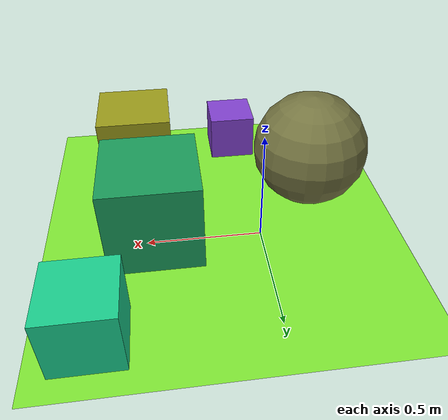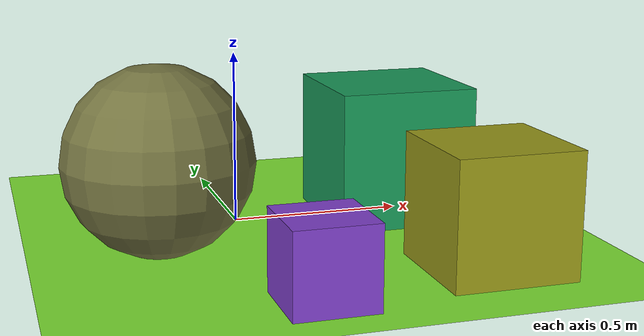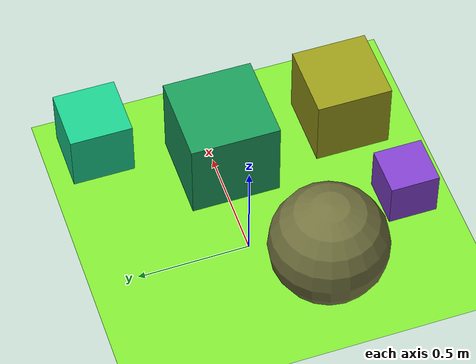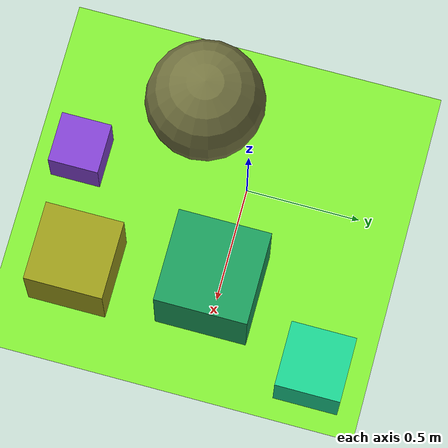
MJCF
<mujoco>
   <asset>
<texture name="gradient_0" builtin="gradient" rgb1="0.2 0.8 0.1" rgb2="0.0 0.4 0.6" width="200" height="200"/>
<texture name="checker_1" builtin="checker" type="2d" rgb1="0.2 0.6 0.5" rgb2="0.0 1.0 0.6" width="200" height="200"/>
<texture name="gradient_2" builtin="gradient" rgb1="0.3 0.5 0.1" rgb2="0.6 0.4 0.4" width="200" height="200"/>
<texture name="checker_3" builtin="checker" type="2d" rgb1="0.1 0.4 0.8" rgb2="0.9 0.1 0.8" width="200" height="200"/>
<texture name="flat_4" builtin="flat" rgb1="0.6 0.6 0.1" rgb2="0.6 0.6 0.1"  width="200" height="200"/><material name="gradient_0_mat" reflectance="1" texture="gradient_0" texuniform="true"/>
<material name="checker_1_mat" reflectance="0.9" texrepeat="9 9" texture="checker_1" texuniform="false" />
<material name="gradient_2_mat" reflectance="1" texture="gradient_2" texuniform="true"/>
<material name="checker_3_mat" reflectance="0.9" texrepeat="5 5" texture="checker_3" texuniform="false" />
<material name="flat_4_mat" reflectance="1" texture="flat_4" texuniform="true"/>
   </asset>

   <worldbody>
      <light diffuse=".9 .9 .9" pos="0 0 3" dir="0 0 -1"/>
     <geom type="plane" size="1 1 0.1" rgba="0.5 0.9 0.2 1"/>
<body pos="0.46 -0.03 0.2">
<joint type="free"/>
 <geom type="box" size="0.2 0.2 0.2" material="gradient_0_mat" />
</body>
<body pos="0.71 0.48 0.14">
<joint type="free"/>
 <geom type="box" size="0.14 0.14 0.14" material="checker_1_mat" />
</body>
<body pos="-0.27 -0.26 0.26">
<joint type="free"/>
 <geom type="sphere" size="0.26 0.26 0.26" material="gradient_2_mat" />
</body>
<body pos="0.04 -0.73 0.11">
<joint type="free"/>
 <geom type="box" size="0.11 0.11 0.11" material="checker_3_mat" />
</body>
<body pos="0.53 -0.61 0.17">
<joint type="free"/>
 <geom type="box" size="0.17 0.17 0.17" material="flat_4_mat" />
</body><camera euler="60 0 180" fovy="60" name="camera_a" pos="0 -1.5 1"></camera>   </worldbody>
</mujoco>
